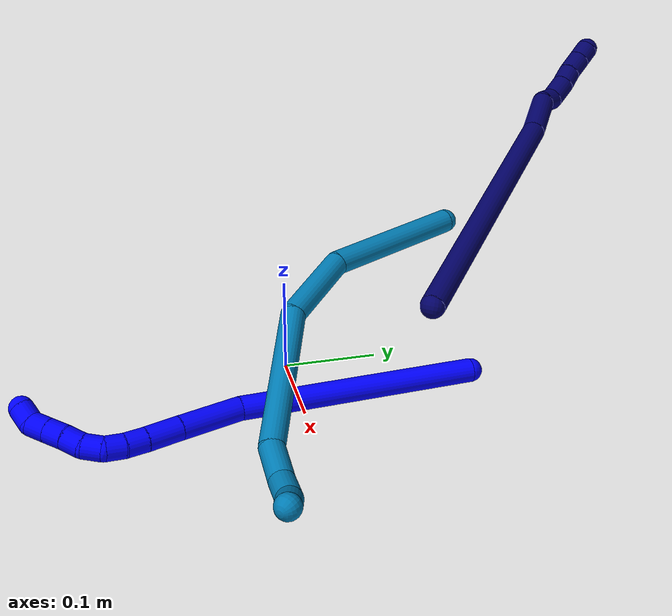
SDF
<sdf version="1.7">
 <world name="default">
  <model name="photoneo_s_sensor">
   <static>1</static>
   <pose>0 0 2 1.57079 1.57079 3.14159</pose>
   <link name="link">
    <inertial><mass>0.1</mass></inertial>
    <sensor name="sensor" type="depth">
     <update_rate>30</update_rate>
     <camera>
      <horizontal_fov>1.22</horizontal_fov>
      <image><width>1920</width><height>1200</height><format>B8G8R8</format></image>
      <clip><near>0.1</near><far>2</far></clip>
      <depth_camera><output>points</output></depth_camera>
     </camera>
     <plugin name="camera_plugin" filename="libgazebo_ros_depth_camera.so">
      <baseline>0.2</baseline>
      <alwaysOn>1</alwaysOn>
      <updateRate>0.0</updateRate>
      <cameraName>camera_ir</cameraName>
      <imageTopicName>/camera/color/image_raw</imageTopicName>
      <cameraInfoTopicName>/camera/color/camera_info</cameraInfoTopicName>
      <depthImageTopicName>/camera/depth/image_raw</depthImageTopicName>
      <depthImageCameraInfoTopicName>/camera/depth/camera_info</depthImageCameraInfoTopicName>
      <pointCloudTopicName>/camera/depth/points</pointCloudTopicName>
      <frameName>fr_optical</frameName>
      <pointCloudCutoff>0.1</pointCloudCutoff>
      <pointCloudCutoffMax>2.0</pointCloudCutoffMax>
      <distortionK1>0</distortionK1>
      <distortionK2>0</distortionK2>
      <distortionK3>0</distortionK3>
      <distortionT1>0</distortionT1>
      <distortionT2>0</distortionT2>
      <CxPrime>0</CxPrime>
      <Cx>0</Cx>
      <Cy>0</Cy>
      <focalLength>0</focalLength>
      <hackBaseline>0</hackBaseline>
     </plugin>
    </sensor>
   </link>
  </model>
  <model name="bin">
   <static>1</static>
   <link name="bottom">
    <collision name="collision-bottom">
     <pose>0 0 -0.01 0 -0 0</pose>
     <geometry><box><size>0.8 0.6 0.02</size></box></geometry>
     <surface>
      <friction><ode><mu>100</mu><mu2>100</mu2></ode></friction>
      <contact><collide_bitmask>65535</collide_bitmask></contact>
     </surface>
    </collision>
   </link>
   <link name="west_wall">
    <collision name="collision-west_wall">
     <pose>-0.41 0 0.1 0 -0 0</pose>
     <geometry><box><size>0.02 0.6 0.2</size></box></geometry>
     <surface>
      <friction><ode><mu>100</mu><mu2>100</mu2></ode></friction>
      <contact><collide_bitmask>65535</collide_bitmask></contact>
     </surface>
    </collision>
   </link>
   <link name="east_wall">
    <collision name="collision-east_wall">
     <pose>0.41 0 0.1 0 -0 0</pose>
     <geometry><box><size>0.02 0.6 0.2</size></box></geometry>
     <surface>
      <friction><ode><mu>100</mu><mu2>100</mu2></ode></friction>
      <contact><collide_bitmask>65535</collide_bitmask></contact>
     </surface>
    </collision>
   </link>
   <link name="south_wall">
    <collision name="collision-south_wall">
     <pose>0 -0.31 0.1 0 -0 0</pose>
     <geometry><box><size>0.8 0.02 0.2</size></box></geometry>
     <surface>
      <friction><ode><mu>100</mu><mu2>100</mu2></ode></friction>
      <contact><collide_bitmask>65535</collide_bitmask></contact>
     </surface>
    </collision>
   </link>
   <link name="north_wall">
    <collision name="collision-north_wall">
     <pose>0 0.31 0.1 0 -0 0</pose>
     <geometry><box><size>0.8 0.02 0.2</size></box></geometry>
     <surface>
      <friction><ode><mu>100</mu><mu2>100</mu2></ode></friction>
      <contact><collide_bitmask>65535</collide_bitmask></contact>
     </surface>
    </collision>
   </link>
  </model>
  <model name="1">
   <static>0</static>
   <link name="1">
    <collision name="collision-cylinder-e_1_1_4">
     <pose>0.031042 -0.114692 -0.042599 1.92642 0.248477 0.355412</pose>
     <geometry><cylinder><radius>0.0125</radius><length>0.252449</length></cylinder></geometry>
     <surface>
      <friction><ode><mu>1.16</mu><mu2>1.16</mu2><slip1>0</slip1><slip2>0</slip2></ode></friction>
      <contact><ode><kp>1e+06</kp><kd>1</kd><max_vel>0</max_vel><min_depth>0.001</min_depth></ode></contact>
     </surface>
    </collision>
    <visual name="visual-cylinder-e_1_1_4">
     <pose>0.031042 -0.114692 -0.042599 1.92642 0.248477 0.355412</pose>
     <geometry><cylinder><radius>0.0125</radius><length>0.252449</length></cylinder></geometry>
     <material><ambient>0 0 1 1</ambient></material>
    </visual>
    <collision name="collision-cylinder-e_2_4_5">
     <pose>0.079162 -0.257807 -0.093272 1.84757 0.524077 0.682253</pose>
     <geometry><cylinder><radius>0.0125</radius><length>0.068256</length></cylinder></geometry>
     <surface>
      <friction><ode><mu>1.16</mu><mu2>1.16</mu2><slip1>0</slip1><slip2>0</slip2></ode></friction>
      <contact><ode><kp>1e+06</kp><kd>1</kd><max_vel>0</max_vel><min_depth>0.001</min_depth></ode></contact>
     </surface>
    </collision>
    <visual name="visual-cylinder-e_2_4_5">
     <pose>0.079162 -0.257807 -0.093272 1.84757 0.524077 0.682253</pose>
     <geometry><cylinder><radius>0.0125</radius><length>0.068256</length></cylinder></geometry>
     <material><ambient>0 0 1 1</ambient></material>
    </visual>
    <collision name="collision-cylinder-e_3_5_6">
     <pose>0.105339 -0.301382 -0.105993 1.86837 0.521194 0.692347</pose>
     <geometry><cylinder><radius>0.0125</radius><length>0.036549</length></cylinder></geometry>
     <surface>
      <friction><ode><mu>1.16</mu><mu2>1.16</mu2><slip1>0</slip1><slip2>0</slip2></ode></friction>
      <contact><ode><kp>1e+06</kp><kd>1</kd><max_vel>0</max_vel><min_depth>0.001</min_depth></ode></contact>
     </surface>
    </collision>
    <visual name="visual-cylinder-e_3_5_6">
     <pose>0.105339 -0.301382 -0.105993 1.86837 0.521194 0.692347</pose>
     <geometry><cylinder><radius>0.0125</radius><length>0.036549</length></cylinder></geometry>
     <material><ambient>0 0 1 1</ambient></material>
    </visual>
    <collision name="collision-cylinder-e_4_6_7">
     <pose>0.11963 -0.326006 -0.113318 1.84645 0.485324 0.632567</pose>
     <geometry><cylinder><radius>0.0125</radius><length>0.022258</length></cylinder></geometry>
     <surface>
      <friction><ode><mu>1.16</mu><mu2>1.16</mu2><slip1>0</slip1><slip2>0</slip2></ode></friction>
      <contact><ode><kp>1e+06</kp><kd>1</kd><max_vel>0</max_vel><min_depth>0.001</min_depth></ode></contact>
     </surface>
    </collision>
    <visual name="visual-cylinder-e_4_6_7">
     <pose>0.11963 -0.326006 -0.113318 1.84645 0.485324 0.632567</pose>
     <geometry><cylinder><radius>0.0125</radius><length>0.022258</length></cylinder></geometry>
     <material><ambient>0 0 1 1</ambient></material>
    </visual>
    <collision name="collision-cylinder-e_5_7_8">
     <pose>0.128069 -0.344711 -0.118357 1.82102 0.328425 0.420456</pose>
     <geometry><cylinder><radius>0.0125</radius><length>0.020137</length></cylinder></geometry>
     <surface>
      <friction><ode><mu>1.16</mu><mu2>1.16</mu2><slip1>0</slip1><slip2>0</slip2></ode></friction>
      <contact><ode><kp>1e+06</kp><kd>1</kd><max_vel>0</max_vel><min_depth>0.001</min_depth></ode></contact>
     </surface>
    </collision>
    <visual name="visual-cylinder-e_5_7_8">
     <pose>0.128069 -0.344711 -0.118357 1.82102 0.328425 0.420456</pose>
     <geometry><cylinder><radius>0.0125</radius><length>0.020137</length></cylinder></geometry>
     <material><ambient>0 0 1 1</ambient></material>
    </visual>
    <collision name="collision-cylinder-e_6_8_9">
     <pose>0.129515 -0.363404 -0.123972 1.90223 -0.178229 -0.249187</pose>
     <geometry><cylinder><radius>0.0125</radius><length>0.020329</length></cylinder></geometry>
     <surface>
      <friction><ode><mu>1.16</mu><mu2>1.16</mu2><slip1>0</slip1><slip2>0</slip2></ode></friction>
      <contact><ode><kp>1e+06</kp><kd>1</kd><max_vel>0</max_vel><min_depth>0.001</min_depth></ode></contact>
     </surface>
    </collision>
    <visual name="visual-cylinder-e_6_8_9">
     <pose>0.129515 -0.363404 -0.123972 1.90223 -0.178229 -0.249187</pose>
     <geometry><cylinder><radius>0.0125</radius><length>0.020329</length></cylinder></geometry>
     <material><ambient>0 0 1 1</ambient></material>
    </visual>
    <collision name="collision-cylinder-e_7_9_10">
     <pose>0.122829 -0.381319 -0.12939 1.82109 -0.510092 -0.647878</pose>
     <geometry><cylinder><radius>0.0125</radius><length>0.020003</length></cylinder></geometry>
     <surface>
      <friction><ode><mu>1.16</mu><mu2>1.16</mu2><slip1>0</slip1><slip2>0</slip2></ode></friction>
      <contact><ode><kp>1e+06</kp><kd>1</kd><max_vel>0</max_vel><min_depth>0.001</min_depth></ode></contact>
     </surface>
    </collision>
    <visual name="visual-cylinder-e_7_9_10">
     <pose>0.122829 -0.381319 -0.12939 1.82109 -0.510092 -0.647878</pose>
     <geometry><cylinder><radius>0.0125</radius><length>0.020003</length></cylinder></geometry>
     <material><ambient>0 0 1 1</ambient></material>
    </visual>
    <collision name="collision-cylinder-e_8_10_11">
     <pose>0.113048 -0.397939 -0.134643 1.93277 -0.511343 -0.723643</pose>
     <geometry><cylinder><radius>0.0125</radius><length>0.020019</length></cylinder></geometry>
     <surface>
      <friction><ode><mu>1.16</mu><mu2>1.16</mu2><slip1>0</slip1><slip2>0</slip2></ode></friction>
      <contact><ode><kp>1e+06</kp><kd>1</kd><max_vel>0</max_vel><min_depth>0.001</min_depth></ode></contact>
     </surface>
    </collision>
    <visual name="visual-cylinder-e_8_10_11">
     <pose>0.113048 -0.397939 -0.134643 1.93277 -0.511343 -0.723643</pose>
     <geometry><cylinder><radius>0.0125</radius><length>0.020019</length></cylinder></geometry>
     <material><ambient>0 0 1 1</ambient></material>
    </visual>
    <collision name="collision-cylinder-e_9_11_12">
     <pose>0.103268 -0.414298 -0.140734 1.92172 -0.510004 -0.714073</pose>
     <geometry><cylinder><radius>0.0125</radius><length>0.02</length></cylinder></geometry>
     <surface>
      <friction><ode><mu>1.16</mu><mu2>1.16</mu2><slip1>0</slip1><slip2>0</slip2></ode></friction>
      <contact><ode><kp>1e+06</kp><kd>1</kd><max_vel>0</max_vel><min_depth>0.001</min_depth></ode></contact>
     </surface>
    </collision>
    <visual name="visual-cylinder-e_9_11_12">
     <pose>0.103268 -0.414298 -0.140734 1.92172 -0.510004 -0.714073</pose>
     <geometry><cylinder><radius>0.0125</radius><length>0.02</length></cylinder></geometry>
     <material><ambient>0 0 1 1</ambient></material>
    </visual>
    <collision name="collision-cylinder-e_10_12_2">
     <pose>0.090672 -0.428832 -0.143155 1.47965 -0.880952 -0.812609</pose>
     <geometry><cylinder><radius>0.0125</radius><length>0.020001</length></cylinder></geometry>
     <surface>
      <friction><ode><mu>1.16</mu><mu2>1.16</mu2><slip1>0</slip1><slip2>0</slip2></ode></friction>
      <contact><ode><kp>1e+06</kp><kd>1</kd><max_vel>0</max_vel><min_depth>0.001</min_depth></ode></contact>
     </surface>
    </collision>
    <visual name="visual-cylinder-e_10_12_2">
     <pose>0.090672 -0.428832 -0.143155 1.47965 -0.880952 -0.812609</pose>
     <geometry><cylinder><radius>0.0125</radius><length>0.020001</length></cylinder></geometry>
     <material><ambient>0 0 1 1</ambient></material>
    </visual>
    <collision name="collision-sphere-2">
     <pose>0.082959 -0.43517 -0.142576 0 -0 0</pose>
     <geometry><sphere><radius>0.0125</radius></sphere></geometry>
     <surface>
      <friction><ode><mu>1.16</mu><mu2>1.16</mu2><slip1>0</slip1><slip2>0</slip2></ode></friction>
      <contact><ode><kp>1e+06</kp><kd>1</kd><max_vel>0</max_vel><min_depth>0.001</min_depth></ode></contact>
     </surface>
    </collision>
    <visual name="visual-sphere-2">
     <pose>0.082959 -0.43517 -0.142576 0 -0 0</pose>
     <geometry><sphere><radius>0.0125</radius></sphere></geometry>
     <material><ambient>0 0 1 1</ambient></material>
    </visual>
    <collision name="collision-sphere-12">
     <pose>0.098386 -0.422494 -0.143734 0 -0 0</pose>
     <geometry><sphere><radius>0.0125</radius></sphere></geometry>
     <surface>
      <friction><ode><mu>1.16</mu><mu2>1.16</mu2><slip1>0</slip1><slip2>0</slip2></ode></friction>
      <contact><ode><kp>1e+06</kp><kd>1</kd><max_vel>0</max_vel><min_depth>0.001</min_depth></ode></contact>
     </surface>
    </collision>
    <visual name="visual-sphere-12">
     <pose>0.098386 -0.422494 -0.143734 0 -0 0</pose>
     <geometry><sphere><radius>0.0125</radius></sphere></geometry>
     <material><ambient>0 0 1 1</ambient></material>
    </visual>
    <collision name="collision-sphere-11">
     <pose>0.10815 -0.406103 -0.137734 0 -0 0</pose>
     <geometry><sphere><radius>0.0125</radius></sphere></geometry>
     <surface>
      <friction><ode><mu>1.16</mu><mu2>1.16</mu2><slip1>0</slip1><slip2>0</slip2></ode></friction>
      <contact><ode><kp>1e+06</kp><kd>1</kd><max_vel>0</max_vel><min_depth>0.001</min_depth></ode></contact>
     </surface>
    </collision>
    <visual name="visual-sphere-11">
     <pose>0.10815 -0.406103 -0.137734 0 -0 0</pose>
     <geometry><sphere><radius>0.0125</radius></sphere></geometry>
     <material><ambient>0 0 1 1</ambient></material>
    </visual>
    <collision name="collision-sphere-10">
     <pose>0.117946 -0.389775 -0.131551 0 -0 0</pose>
     <geometry><sphere><radius>0.0125</radius></sphere></geometry>
     <surface>
      <friction><ode><mu>1.16</mu><mu2>1.16</mu2><slip1>0</slip1><slip2>0</slip2></ode></friction>
      <contact><ode><kp>1e+06</kp><kd>1</kd><max_vel>0</max_vel><min_depth>0.001</min_depth></ode></contact>
     </surface>
    </collision>
    <visual name="visual-sphere-10">
     <pose>0.117946 -0.389775 -0.131551 0 -0 0</pose>
     <geometry><sphere><radius>0.0125</radius></sphere></geometry>
     <material><ambient>0 0 1 1</ambient></material>
    </visual>
    <collision name="collision-sphere-9">
     <pose>0.127713 -0.372863 -0.127228 0 -0 0</pose>
     <geometry><sphere><radius>0.0125</radius></sphere></geometry>
     <surface>
      <friction><ode><mu>1.16</mu><mu2>1.16</mu2><slip1>0</slip1><slip2>0</slip2></ode></friction>
      <contact><ode><kp>1e+06</kp><kd>1</kd><max_vel>0</max_vel><min_depth>0.001</min_depth></ode></contact>
     </surface>
    </collision>
    <visual name="visual-sphere-9">
     <pose>0.127713 -0.372863 -0.127228 0 -0 0</pose>
     <geometry><sphere><radius>0.0125</radius></sphere></geometry>
     <material><ambient>0 0 1 1</ambient></material>
    </visual>
    <collision name="collision-sphere-4">
     <pose>0.062084 -0.229385 -0.085198 0 -0 0</pose>
     <geometry><sphere><radius>0.0125</radius></sphere></geometry>
     <surface>
      <friction><ode><mu>1.16</mu><mu2>1.16</mu2><slip1>0</slip1><slip2>0</slip2></ode></friction>
      <contact><ode><kp>1e+06</kp><kd>1</kd><max_vel>0</max_vel><min_depth>0.001</min_depth></ode></contact>
     </surface>
    </collision>
    <visual name="visual-sphere-4">
     <pose>0.062084 -0.229385 -0.085198 0 -0 0</pose>
     <geometry><sphere><radius>0.0125</radius></sphere></geometry>
     <material><ambient>0 0 1 1</ambient></material>
    </visual>
    <collision name="collision-sphere-1">
     <geometry><sphere><radius>0.0125</radius></sphere></geometry>
     <surface>
      <friction><ode><mu>1.16</mu><mu2>1.16</mu2><slip1>0</slip1><slip2>0</slip2></ode></friction>
      <contact><ode><kp>1e+06</kp><kd>1</kd><max_vel>0</max_vel><min_depth>0.001</min_depth></ode></contact>
     </surface>
    </collision>
    <visual name="visual-sphere-1">
     <geometry><sphere><radius>0.0125</radius></sphere></geometry>
     <material><ambient>0 0 1 1</ambient></material>
    </visual>
    <collision name="collision-sphere-8">
     <pose>0.131317 -0.353945 -0.120717 0 -0 0</pose>
     <geometry><sphere><radius>0.0125</radius></sphere></geometry>
     <surface>
      <friction><ode><mu>1.16</mu><mu2>1.16</mu2><slip1>0</slip1><slip2>0</slip2></ode></friction>
      <contact><ode><kp>1e+06</kp><kd>1</kd><max_vel>0</max_vel><min_depth>0.001</min_depth></ode></contact>
     </surface>
    </collision>
    <visual name="visual-sphere-8">
     <pose>0.131317 -0.353945 -0.120717 0 -0 0</pose>
     <geometry><sphere><radius>0.0125</radius></sphere></geometry>
     <material><ambient>0 0 1 1</ambient></material>
    </visual>
    <collision name="collision-sphere-5">
     <pose>0.09624 -0.28623 -0.101346 0 -0 0</pose>
     <geometry><sphere><radius>0.0125</radius></sphere></geometry>
     <surface>
      <friction><ode><mu>1.16</mu><mu2>1.16</mu2><slip1>0</slip1><slip2>0</slip2></ode></friction>
      <contact><ode><kp>1e+06</kp><kd>1</kd><max_vel>0</max_vel><min_depth>0.001</min_depth></ode></contact>
     </surface>
    </collision>
    <visual name="visual-sphere-5">
     <pose>0.09624 -0.28623 -0.101346 0 -0 0</pose>
     <geometry><sphere><radius>0.0125</radius></sphere></geometry>
     <material><ambient>0 0 1 1</ambient></material>
    </visual>
    <collision name="collision-sphere-6">
     <pose>0.114439 -0.316534 -0.110639 0 -0 0</pose>
     <geometry><sphere><radius>0.0125</radius></sphere></geometry>
     <surface>
      <friction><ode><mu>1.16</mu><mu2>1.16</mu2><slip1>0</slip1><slip2>0</slip2></ode></friction>
      <contact><ode><kp>1e+06</kp><kd>1</kd><max_vel>0</max_vel><min_depth>0.001</min_depth></ode></contact>
     </surface>
    </collision>
    <visual name="visual-sphere-6">
     <pose>0.114439 -0.316534 -0.110639 0 -0 0</pose>
     <geometry><sphere><radius>0.0125</radius></sphere></geometry>
     <material><ambient>0 0 1 1</ambient></material>
    </visual>
    <collision name="collision-sphere-7">
     <pose>0.124822 -0.335478 -0.115998 0 -0 0</pose>
     <geometry><sphere><radius>0.0125</radius></sphere></geometry>
     <surface>
      <friction><ode><mu>1.16</mu><mu2>1.16</mu2><slip1>0</slip1><slip2>0</slip2></ode></friction>
      <contact><ode><kp>1e+06</kp><kd>1</kd><max_vel>0</max_vel><min_depth>0.001</min_depth></ode></contact>
     </surface>
    </collision>
    <visual name="visual-sphere-7">
     <pose>0.124822 -0.335478 -0.115998 0 -0 0</pose>
     <geometry><sphere><radius>0.0125</radius></sphere></geometry>
     <material><ambient>0 0 1 1</ambient></material>
    </visual>
    <inertial>
     <pose>0.067127 -0.223216 -0.078763 0 -0 0</pose>
     <mass>0.5</mass>
     <inertia>
      <ixx>0.001737</ixx>
      <ixy>0</ixy>
      <ixz>0</ixz>
      <iyy>0.00011</iyy>
      <iyz>0</iyz>
      <izz>0.000906</izz>
     </inertia>
    </inertial>
   </link>
   <pose>0.074303 0.185953 0.011475 -0.400386 0.174281 -0.180521</pose>
  </model>
  <model name="7">
   <static>0</static>
   <link name="7">
    <collision name="collision-cylinder-e_1_1_4">
     <pose>0.011152 0.128479 0.101737 -0.90104 0.067944 -0.032874</pose>
     <geometry><cylinder><radius>0.0125</radius><length>0.328521</length></cylinder></geometry>
     <surface>
      <friction><ode><mu>1.16</mu><mu2>1.16</mu2><slip1>0</slip1><slip2>0</slip2></ode></friction>
      <contact><ode><kp>1e+06</kp><kd>1</kd><max_vel>0</max_vel><min_depth>0.001</min_depth></ode></contact>
     </surface>
    </collision>
    <visual name="visual-cylinder-e_1_1_4">
     <pose>0.011152 0.128479 0.101737 -0.90104 0.067944 -0.032874</pose>
     <geometry><cylinder><radius>0.0125</radius><length>0.328521</length></cylinder></geometry>
     <material><ambient>0.003922 0 0.403922 1</ambient></material>
    </visual>
    <collision name="collision-cylinder-e_2_4_5">
     <pose>0.021244 0.277922 0.22339 -0.811035 -0.036636 0.01573</pose>
     <geometry><cylinder><radius>0.0125</radius><length>0.057872</length></cylinder></geometry>
     <surface>
      <friction><ode><mu>1.16</mu><mu2>1.16</mu2><slip1>0</slip1><slip2>0</slip2></ode></friction>
      <contact><ode><kp>1e+06</kp><kd>1</kd><max_vel>0</max_vel><min_depth>0.001</min_depth></ode></contact>
     </surface>
    </collision>
    <visual name="visual-cylinder-e_2_4_5">
     <pose>0.021244 0.277922 0.22339 -0.811035 -0.036636 0.01573</pose>
     <geometry><cylinder><radius>0.0125</radius><length>0.057872</length></cylinder></geometry>
     <material><ambient>0.003922 0 0.403922 1</ambient></material>
    </visual>
    <collision name="collision-cylinder-e_3_5_6">
     <pose>0.023513 0.308018 0.247082 -1.17878 0.324913 -0.218321</pose>
     <geometry><cylinder><radius>0.0125</radius><length>0.020853</length></cylinder></geometry>
     <surface>
      <friction><ode><mu>1.16</mu><mu2>1.16</mu2><slip1>0</slip1><slip2>0</slip2></ode></friction>
      <contact><ode><kp>1e+06</kp><kd>1</kd><max_vel>0</max_vel><min_depth>0.001</min_depth></ode></contact>
     </surface>
    </collision>
    <visual name="visual-cylinder-e_3_5_6">
     <pose>0.023513 0.308018 0.247082 -1.17878 0.324913 -0.218321</pose>
     <geometry><cylinder><radius>0.0125</radius><length>0.020853</length></cylinder></geometry>
     <material><ambient>0.003922 0 0.403922 1</ambient></material>
    </visual>
    <collision name="collision-cylinder-e_4_6_7">
     <pose>0.030423 0.325659 0.261654 -0.667428 0.254895 -0.08879</pose>
     <geometry><cylinder><radius>0.0125</radius><length>0.028413</length></cylinder></geometry>
     <surface>
      <friction><ode><mu>1.16</mu><mu2>1.16</mu2><slip1>0</slip1><slip2>0</slip2></ode></friction>
      <contact><ode><kp>1e+06</kp><kd>1</kd><max_vel>0</max_vel><min_depth>0.001</min_depth></ode></contact>
     </surface>
    </collision>
    <visual name="visual-cylinder-e_4_6_7">
     <pose>0.030423 0.325659 0.261654 -0.667428 0.254895 -0.08879</pose>
     <geometry><cylinder><radius>0.0125</radius><length>0.028413</length></cylinder></geometry>
     <material><ambient>0.003922 0 0.403922 1</ambient></material>
    </visual>
    <collision name="collision-cylinder-e_5_7_8">
     <pose>0.035695 0.339738 0.280745 -0.591411 0.167582 -0.05116</pose>
     <geometry><cylinder><radius>0.0125</radius><length>0.020264</length></cylinder></geometry>
     <surface>
      <friction><ode><mu>1.16</mu><mu2>1.16</mu2><slip1>0</slip1><slip2>0</slip2></ode></friction>
      <contact><ode><kp>1e+06</kp><kd>1</kd><max_vel>0</max_vel><min_depth>0.001</min_depth></ode></contact>
     </surface>
    </collision>
    <visual name="visual-cylinder-e_5_7_8">
     <pose>0.035695 0.339738 0.280745 -0.591411 0.167582 -0.05116</pose>
     <geometry><cylinder><radius>0.0125</radius><length>0.020264</length></cylinder></geometry>
     <material><ambient>0.003922 0 0.403922 1</ambient></material>
    </visual>
    <collision name="collision-cylinder-e_6_8_9">
     <pose>0.040621 0.351965 0.298462 -0.615017 0.27343 -0.087326</pose>
     <geometry><cylinder><radius>0.0125</radius><length>0.023967</length></cylinder></geometry>
     <surface>
      <friction><ode><mu>1.16</mu><mu2>1.16</mu2><slip1>0</slip1><slip2>0</slip2></ode></friction>
      <contact><ode><kp>1e+06</kp><kd>1</kd><max_vel>0</max_vel><min_depth>0.001</min_depth></ode></contact>
     </surface>
    </collision>
    <visual name="visual-cylinder-e_6_8_9">
     <pose>0.040621 0.351965 0.298462 -0.615017 0.27343 -0.087326</pose>
     <geometry><cylinder><radius>0.0125</radius><length>0.023967</length></cylinder></geometry>
     <material><ambient>0.003922 0 0.403922 1</ambient></material>
    </visual>
    <collision name="collision-cylinder-e_7_9_2">
     <pose>0.046595 0.364041 0.315901 -0.59448 0.275827 -0.084978</pose>
     <geometry><cylinder><radius>0.0125</radius><length>0.02011</length></cylinder></geometry>
     <surface>
      <friction><ode><mu>1.16</mu><mu2>1.16</mu2><slip1>0</slip1><slip2>0</slip2></ode></friction>
      <contact><ode><kp>1e+06</kp><kd>1</kd><max_vel>0</max_vel><min_depth>0.001</min_depth></ode></contact>
     </surface>
    </collision>
    <visual name="visual-cylinder-e_7_9_2">
     <pose>0.046595 0.364041 0.315901 -0.59448 0.275827 -0.084978</pose>
     <geometry><cylinder><radius>0.0125</radius><length>0.02011</length></cylinder></geometry>
     <material><ambient>0.003922 0 0.403922 1</ambient></material>
    </visual>
    <collision name="collision-sphere-2">
     <pose>0.049334 0.369459 0.323916 0 -0 0</pose>
     <geometry><sphere><radius>0.0125</radius></sphere></geometry>
     <surface>
      <friction><ode><mu>1.16</mu><mu2>1.16</mu2><slip1>0</slip1><slip2>0</slip2></ode></friction>
      <contact><ode><kp>1e+06</kp><kd>1</kd><max_vel>0</max_vel><min_depth>0.001</min_depth></ode></contact>
     </surface>
    </collision>
    <visual name="visual-sphere-2">
     <pose>0.049334 0.369459 0.323916 0 -0 0</pose>
     <geometry><sphere><radius>0.0125</radius></sphere></geometry>
     <material><ambient>0.003922 0 0.403922 1</ambient></material>
    </visual>
    <collision name="collision-sphere-9">
     <pose>0.043857 0.358622 0.307886 0 -0 0</pose>
     <geometry><sphere><radius>0.0125</radius></sphere></geometry>
     <surface>
      <friction><ode><mu>1.16</mu><mu2>1.16</mu2><slip1>0</slip1><slip2>0</slip2></ode></friction>
      <contact><ode><kp>1e+06</kp><kd>1</kd><max_vel>0</max_vel><min_depth>0.001</min_depth></ode></contact>
     </surface>
    </collision>
    <visual name="visual-sphere-9">
     <pose>0.043857 0.358622 0.307886 0 -0 0</pose>
     <geometry><sphere><radius>0.0125</radius></sphere></geometry>
     <material><ambient>0.003922 0 0.403922 1</ambient></material>
    </visual>
    <collision name="collision-sphere-4">
     <pose>0.022304 0.256958 0.203474 0 -0 0</pose>
     <geometry><sphere><radius>0.0125</radius></sphere></geometry>
     <surface>
      <friction><ode><mu>1.16</mu><mu2>1.16</mu2><slip1>0</slip1><slip2>0</slip2></ode></friction>
      <contact><ode><kp>1e+06</kp><kd>1</kd><max_vel>0</max_vel><min_depth>0.001</min_depth></ode></contact>
     </surface>
    </collision>
    <visual name="visual-sphere-4">
     <pose>0.022304 0.256958 0.203474 0 -0 0</pose>
     <geometry><sphere><radius>0.0125</radius></sphere></geometry>
     <material><ambient>0.003922 0 0.403922 1</ambient></material>
    </visual>
    <collision name="collision-sphere-1">
     <geometry><sphere><radius>0.0125</radius></sphere></geometry>
     <surface>
      <friction><ode><mu>1.16</mu><mu2>1.16</mu2><slip1>0</slip1><slip2>0</slip2></ode></friction>
      <contact><ode><kp>1e+06</kp><kd>1</kd><max_vel>0</max_vel><min_depth>0.001</min_depth></ode></contact>
     </surface>
    </collision>
    <visual name="visual-sphere-1">
     <geometry><sphere><radius>0.0125</radius></sphere></geometry>
     <material><ambient>0.003922 0 0.403922 1</ambient></material>
    </visual>
    <collision name="collision-sphere-8">
     <pose>0.037385 0.345308 0.289038 0 -0 0</pose>
     <geometry><sphere><radius>0.0125</radius></sphere></geometry>
     <surface>
      <friction><ode><mu>1.16</mu><mu2>1.16</mu2><slip1>0</slip1><slip2>0</slip2></ode></friction>
      <contact><ode><kp>1e+06</kp><kd>1</kd><max_vel>0</max_vel><min_depth>0.001</min_depth></ode></contact>
     </surface>
    </collision>
    <visual name="visual-sphere-8">
     <pose>0.037385 0.345308 0.289038 0 -0 0</pose>
     <geometry><sphere><radius>0.0125</radius></sphere></geometry>
     <material><ambient>0.003922 0 0.403922 1</ambient></material>
    </visual>
    <collision name="collision-sphere-5">
     <pose>0.020184 0.298887 0.243306 0 -0 0</pose>
     <geometry><sphere><radius>0.0125</radius></sphere></geometry>
     <surface>
      <friction><ode><mu>1.16</mu><mu2>1.16</mu2><slip1>0</slip1><slip2>0</slip2></ode></friction>
      <contact><ode><kp>1e+06</kp><kd>1</kd><max_vel>0</max_vel><min_depth>0.001</min_depth></ode></contact>
     </surface>
    </collision>
    <visual name="visual-sphere-5">
     <pose>0.020184 0.298887 0.243306 0 -0 0</pose>
     <geometry><sphere><radius>0.0125</radius></sphere></geometry>
     <material><ambient>0.003922 0 0.403922 1</ambient></material>
    </visual>
    <collision name="collision-sphere-6">
     <pose>0.026841 0.31715 0.250857 0 -0 0</pose>
     <geometry><sphere><radius>0.0125</radius></sphere></geometry>
     <surface>
      <friction><ode><mu>1.16</mu><mu2>1.16</mu2><slip1>0</slip1><slip2>0</slip2></ode></friction>
      <contact><ode><kp>1e+06</kp><kd>1</kd><max_vel>0</max_vel><min_depth>0.001</min_depth></ode></contact>
     </surface>
    </collision>
    <visual name="visual-sphere-6">
     <pose>0.026841 0.31715 0.250857 0 -0 0</pose>
     <geometry><sphere><radius>0.0125</radius></sphere></geometry>
     <material><ambient>0.003922 0 0.403922 1</ambient></material>
    </visual>
    <collision name="collision-sphere-7">
     <pose>0.034005 0.334168 0.272451 0 -0 0</pose>
     <geometry><sphere><radius>0.0125</radius></sphere></geometry>
     <surface>
      <friction><ode><mu>1.16</mu><mu2>1.16</mu2><slip1>0</slip1><slip2>0</slip2></ode></friction>
      <contact><ode><kp>1e+06</kp><kd>1</kd><max_vel>0</max_vel><min_depth>0.001</min_depth></ode></contact>
     </surface>
    </collision>
    <visual name="visual-sphere-7">
     <pose>0.034005 0.334168 0.272451 0 -0 0</pose>
     <geometry><sphere><radius>0.0125</radius></sphere></geometry>
     <material><ambient>0.003922 0 0.403922 1</ambient></material>
    </visual>
    <inertial>
     <pose>0.017763 0.193217 0.156265 0 -0 0</pose>
     <mass>0.5</mass>
     <inertia>
      <ixx>0.002893</ixx>
      <ixy>0</ixy>
      <ixz>0</ixz>
      <iyy>0.001797</iyy>
      <iyz>0</iyz>
      <izz>-0.002518</izz>
     </inertia>
    </inertial>
   </link>
   <pose>0.165828 0.110525 0.143084 -0.440747 0.048906 0.984239</pose>
  </model>
  <model name="9">
   <static>0</static>
   <link name="9">
    <collision name="collision-cylinder-e_1_1_4">
     <pose>-0.019678 -0.012143 0.07376 0.16317 -0.257396 -0.021162</pose>
     <geometry><cylinder><radius>0.0125</radius><length>0.1546</length></cylinder></geometry>
     <surface>
      <friction><ode><mu>1.16</mu><mu2>1.16</mu2><slip1>0</slip1><slip2>0</slip2></ode></friction>
      <contact><ode><kp>1e+06</kp><kd>1</kd><max_vel>0</max_vel><min_depth>0.001</min_depth></ode></contact>
     </surface>
    </collision>
    <visual name="visual-cylinder-e_1_1_4">
     <pose>-0.019678 -0.012143 0.07376 0.16317 -0.257396 -0.021162</pose>
     <geometry><cylinder><radius>0.0125</radius><length>0.1546</length></cylinder></geometry>
     <material><ambient>0 0.490196 0.709804 1</ambient></material>
    </visual>
    <collision name="collision-cylinder-e_2_4_5">
     <pose>-0.032658 -0.029409 0.191696 0.115428 0.149468 0.008652</pose>
     <geometry><cylinder><radius>0.0125</radius><length>0.089945</length></cylinder></geometry>
     <surface>
      <friction><ode><mu>1.16</mu><mu2>1.16</mu2><slip1>0</slip1><slip2>0</slip2></ode></friction>
      <contact><ode><kp>1e+06</kp><kd>1</kd><max_vel>0</max_vel><min_depth>0.001</min_depth></ode></contact>
     </surface>
    </collision>
    <visual name="visual-cylinder-e_2_4_5">
     <pose>-0.032658 -0.029409 0.191696 0.115428 0.149468 0.008652</pose>
     <geometry><cylinder><radius>0.0125</radius><length>0.089945</length></cylinder></geometry>
     <material><ambient>0 0.490196 0.709804 1</ambient></material>
    </visual>
    <collision name="collision-cylinder-e_3_5_6">
     <pose>0.016291 -0.038692 0.302756 0.062132 0.562543 0.017957</pose>
     <geometry><cylinder><radius>0.0125</radius><length>0.158445</length></cylinder></geometry>
     <surface>
      <friction><ode><mu>1.16</mu><mu2>1.16</mu2><slip1>0</slip1><slip2>0</slip2></ode></friction>
      <contact><ode><kp>1e+06</kp><kd>1</kd><max_vel>0</max_vel><min_depth>0.001</min_depth></ode></contact>
     </surface>
    </collision>
    <visual name="visual-cylinder-e_3_5_6">
     <pose>0.016291 -0.038692 0.302756 0.062132 0.562543 0.017957</pose>
     <geometry><cylinder><radius>0.0125</radius><length>0.158445</length></cylinder></geometry>
     <material><ambient>0 0.490196 0.709804 1</ambient></material>
    </visual>
    <collision name="collision-cylinder-e_4_6_7">
     <pose>0.073126 -0.038994 0.382487 -0.291806 0.827168 -0.128812</pose>
     <geometry><cylinder><radius>0.0125</radius><length>0.039624</length></cylinder></geometry>
     <surface>
      <friction><ode><mu>1.16</mu><mu2>1.16</mu2><slip1>0</slip1><slip2>0</slip2></ode></friction>
      <contact><ode><kp>1e+06</kp><kd>1</kd><max_vel>0</max_vel><min_depth>0.001</min_depth></ode></contact>
     </surface>
    </collision>
    <visual name="visual-cylinder-e_4_6_7">
     <pose>0.073126 -0.038994 0.382487 -0.291806 0.827168 -0.128812</pose>
     <geometry><cylinder><radius>0.0125</radius><length>0.039624</length></cylinder></geometry>
     <material><ambient>0 0.490196 0.709804 1</ambient></material>
    </visual>
    <collision name="collision-cylinder-e_5_7_8">
     <pose>0.096396 -0.027934 0.405582 -0.612448 0.606385 -0.197178</pose>
     <geometry><cylinder><radius>0.0125</radius><length>0.03049</length></cylinder></geometry>
     <surface>
      <friction><ode><mu>1.16</mu><mu2>1.16</mu2><slip1>0</slip1><slip2>0</slip2></ode></friction>
      <contact><ode><kp>1e+06</kp><kd>1</kd><max_vel>0</max_vel><min_depth>0.001</min_depth></ode></contact>
     </surface>
    </collision>
    <visual name="visual-cylinder-e_5_7_8">
     <pose>0.096396 -0.027934 0.405582 -0.612448 0.606385 -0.197178</pose>
     <geometry><cylinder><radius>0.0125</radius><length>0.03049</length></cylinder></geometry>
     <material><ambient>0 0.490196 0.709804 1</ambient></material>
    </visual>
    <collision name="collision-cylinder-e_6_8_2">
     <pose>0.107637 -0.012291 0.425984 -0.693661 0.190993 -0.069216</pose>
     <geometry><cylinder><radius>0.0125</radius><length>0.026896</length></cylinder></geometry>
     <surface>
      <friction><ode><mu>1.16</mu><mu2>1.16</mu2><slip1>0</slip1><slip2>0</slip2></ode></friction>
      <contact><ode><kp>1e+06</kp><kd>1</kd><max_vel>0</max_vel><min_depth>0.001</min_depth></ode></contact>
     </surface>
    </collision>
    <visual name="visual-cylinder-e_6_8_2">
     <pose>0.107637 -0.012291 0.425984 -0.693661 0.190993 -0.069216</pose>
     <geometry><cylinder><radius>0.0125</radius><length>0.026896</length></cylinder></geometry>
     <material><ambient>0 0.490196 0.709804 1</ambient></material>
    </visual>
    <collision name="collision-sphere-2">
     <pose>0.11019 -0.00385 0.436136 0 -0 0</pose>
     <geometry><sphere><radius>0.0125</radius></sphere></geometry>
     <surface>
      <friction><ode><mu>1.16</mu><mu2>1.16</mu2><slip1>0</slip1><slip2>0</slip2></ode></friction>
      <contact><ode><kp>1e+06</kp><kd>1</kd><max_vel>0</max_vel><min_depth>0.001</min_depth></ode></contact>
     </surface>
    </collision>
    <visual name="visual-sphere-2">
     <pose>0.11019 -0.00385 0.436136 0 -0 0</pose>
     <geometry><sphere><radius>0.0125</radius></sphere></geometry>
     <material><ambient>0 0.490196 0.709804 1</ambient></material>
    </visual>
    <collision name="collision-sphere-4">
     <pose>-0.039355 -0.024287 0.147521 0 -0 0</pose>
     <geometry><sphere><radius>0.0125</radius></sphere></geometry>
     <surface>
      <friction><ode><mu>1.16</mu><mu2>1.16</mu2><slip1>0</slip1><slip2>0</slip2></ode></friction>
      <contact><ode><kp>1e+06</kp><kd>1</kd><max_vel>0</max_vel><min_depth>0.001</min_depth></ode></contact>
     </surface>
    </collision>
    <visual name="visual-sphere-4">
     <pose>-0.039355 -0.024287 0.147521 0 -0 0</pose>
     <geometry><sphere><radius>0.0125</radius></sphere></geometry>
     <material><ambient>0 0.490196 0.709804 1</ambient></material>
    </visual>
    <collision name="collision-sphere-1">
     <geometry><sphere><radius>0.0125</radius></sphere></geometry>
     <surface>
      <friction><ode><mu>1.16</mu><mu2>1.16</mu2><slip1>0</slip1><slip2>0</slip2></ode></friction>
      <contact><ode><kp>1e+06</kp><kd>1</kd><max_vel>0</max_vel><min_depth>0.001</min_depth></ode></contact>
     </surface>
    </collision>
    <visual name="visual-sphere-1">
     <geometry><sphere><radius>0.0125</radius></sphere></geometry>
     <material><ambient>0 0.490196 0.709804 1</ambient></material>
    </visual>
    <collision name="collision-sphere-8">
     <pose>0.105084 -0.020733 0.415832 0 -0 0</pose>
     <geometry><sphere><radius>0.0125</radius></sphere></geometry>
     <surface>
      <friction><ode><mu>1.16</mu><mu2>1.16</mu2><slip1>0</slip1><slip2>0</slip2></ode></friction>
      <contact><ode><kp>1e+06</kp><kd>1</kd><max_vel>0</max_vel><min_depth>0.001</min_depth></ode></contact>
     </surface>
    </collision>
    <visual name="visual-sphere-8">
     <pose>0.105084 -0.020733 0.415832 0 -0 0</pose>
     <geometry><sphere><radius>0.0125</radius></sphere></geometry>
     <material><ambient>0 0.490196 0.709804 1</ambient></material>
    </visual>
    <collision name="collision-sphere-5">
     <pose>-0.025961 -0.03453 0.235871 0 -0 0</pose>
     <geometry><sphere><radius>0.0125</radius></sphere></geometry>
     <surface>
      <friction><ode><mu>1.16</mu><mu2>1.16</mu2><slip1>0</slip1><slip2>0</slip2></ode></friction>
      <contact><ode><kp>1e+06</kp><kd>1</kd><max_vel>0</max_vel><min_depth>0.001</min_depth></ode></contact>
     </surface>
    </collision>
    <visual name="visual-sphere-5">
     <pose>-0.025961 -0.03453 0.235871 0 -0 0</pose>
     <geometry><sphere><radius>0.0125</radius></sphere></geometry>
     <material><ambient>0 0.490196 0.709804 1</ambient></material>
    </visual>
    <collision name="collision-sphere-6">
     <pose>0.058544 -0.042853 0.369641 0 -0 0</pose>
     <geometry><sphere><radius>0.0125</radius></sphere></geometry>
     <surface>
      <friction><ode><mu>1.16</mu><mu2>1.16</mu2><slip1>0</slip1><slip2>0</slip2></ode></friction>
      <contact><ode><kp>1e+06</kp><kd>1</kd><max_vel>0</max_vel><min_depth>0.001</min_depth></ode></contact>
     </surface>
    </collision>
    <visual name="visual-sphere-6">
     <pose>0.058544 -0.042853 0.369641 0 -0 0</pose>
     <geometry><sphere><radius>0.0125</radius></sphere></geometry>
     <material><ambient>0 0.490196 0.709804 1</ambient></material>
    </visual>
    <collision name="collision-sphere-7">
     <pose>0.087708 -0.035136 0.395332 0 -0 0</pose>
     <geometry><sphere><radius>0.0125</radius></sphere></geometry>
     <surface>
      <friction><ode><mu>1.16</mu><mu2>1.16</mu2><slip1>0</slip1><slip2>0</slip2></ode></friction>
      <contact><ode><kp>1e+06</kp><kd>1</kd><max_vel>0</max_vel><min_depth>0.001</min_depth></ode></contact>
     </surface>
    </collision>
    <visual name="visual-sphere-7">
     <pose>0.087708 -0.035136 0.395332 0 -0 0</pose>
     <geometry><sphere><radius>0.0125</radius></sphere></geometry>
     <material><ambient>0 0.490196 0.709804 1</ambient></material>
    </visual>
    <inertial>
     <pose>0.010667 -0.026761 0.23119 0 -0 0</pose>
     <mass>0.5</mass>
     <inertia>
      <ixx>0.000669</ixx>
      <ixy>0</ixy>
      <ixz>0</ixz>
      <iyy>0.00072</iyy>
      <iyz>0</iyz>
      <izz>-1.3e-05</izz>
     </inertia>
    </inertial>
   </link>
   <pose>-0.034098 0.188227 0.139383 1.61707 0.562967 0.781101</pose>
  </model>
 </world>
</sdf>
